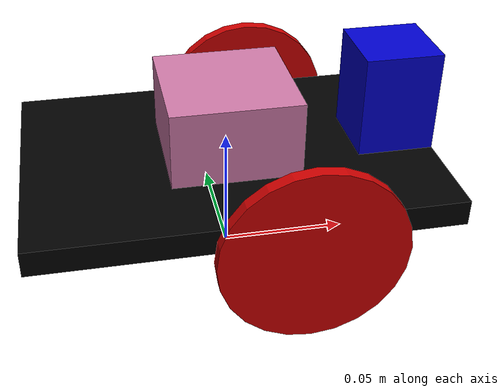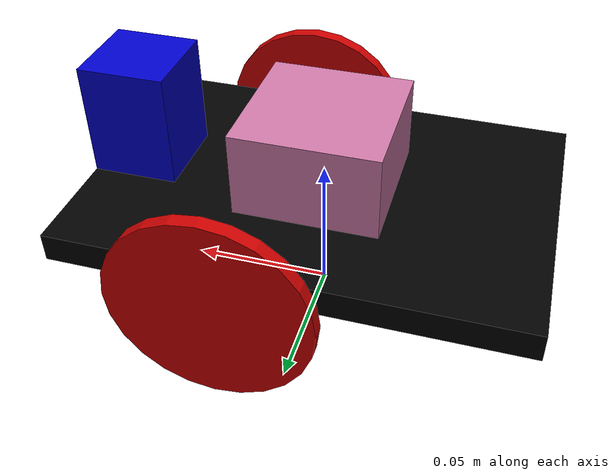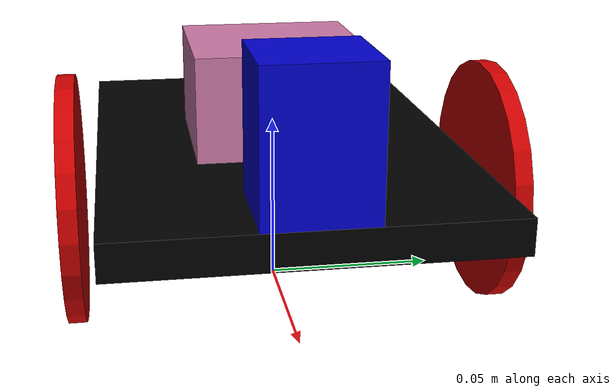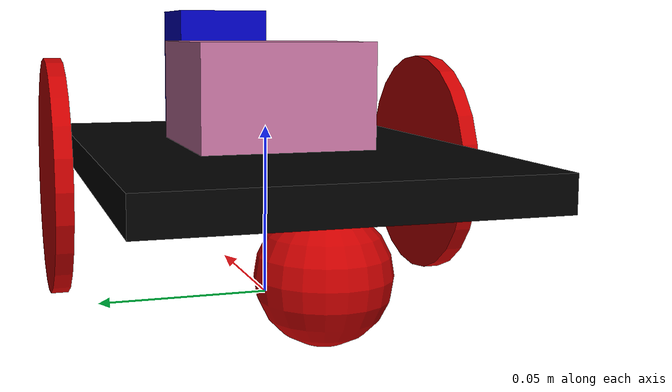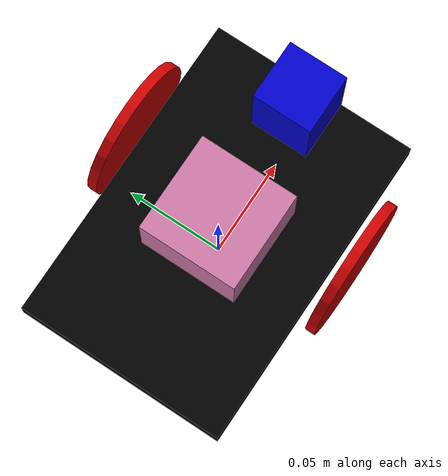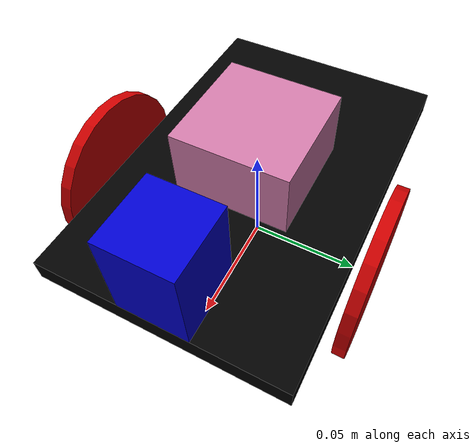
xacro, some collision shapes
<?xml version="1.0"?>
<robot xmlns:xacro="http://www.ros.org/wiki/xacro" name="mybot">

  <xacro:include filename="$(find lidar_based_tracking_object)/urdf/laser.xacro" />

  <xacro:property name="base_width" value="0.106"/>
  <xacro:property name="base_len" value="0.16"/>
  <xacro:property name="wheel_radius" value="0.035"/>
  <xacro:property name="base_wheel_gap" value="0.007"/>
  <xacro:property name="wheel_separation" value="0.12"/>
  <xacro:property name="wheel_joint_offset" value="0.02"/>

  <xacro:property name="caster_wheel_radius" value="${wheel_radius/2}"/>
  <xacro:property name="caster_wheel_mass" value="0.001"/>
  <xacro:property name="caster_wheel_joint_offset" value="-0.052"/>

  <xacro:property name="laser_size_x" value="0.03"/>
  <xacro:property name="laser_size_y" value="0.03"/>
  <xacro:property name="laser_size_z" value="0.04"/>
  <xacro:property name="laser_origin_x" value="0.065"/>
  <xacro:property name="laser_origin_y" value="0"/>
  <xacro:property name="laser_origin_z" value="0.025"/>

  <material name="blue">
    <color rgba="0 0 0.8 1"/>
  </material>
  <material name="black">
    <color rgba="0 0 0 1"/>
  </material>
  <material name="white">
    <color rgba="1 1 1 1"/>
  </material>
  <material name="red">
    <color rgba="0.8 0.0 0.0 1.0"/>
  </material>

  <xacro:macro name="default_inertial" params="mass">
    <inertial>
      <mass value="${mass}"/>
      <inertia ixx="1.0" ixy="0.0" ixz="0.0" iyy="1.0" iyz="0.0" izz="1.0"/>
    </inertial>
  </xacro:macro>

  <xacro:macro name="box_inertia" params="m w h d">
    <inertial>
      <origin xyz="0 0 0" rpy="${pi/2} 0 ${pi/2}"/>
      <mass value="${m}"/>
      <inertia ixx="${(m/12) * (h*h + d*d)}" ixy="0.0" ixz="0.0" iyy="${(m/12) * (w*w + d*d)}" iyz="0.0" izz="${(m/12) * (w*w + h*h)}"/>
    </inertial>
  </xacro:macro>

  <link name="base_footprint">
    <inertial>
      <mass value="0.0001" />
      <origin xyz="0 0 0" />
      <inertia ixx="0.0001" ixy="0.0" ixz="0.0"
          iyy="0.0001" iyz="0.0"
          izz="0.0001" />
    </inertial>
    <visual>
        <origin xyz="0 0 0" rpy="0 0 0" />
        <geometry>
            <box size="0.001 0.001 0.001" />
        </geometry>
    </visual>
  </link>

  <link name="base_link">
    <visual>
      <geometry>
        <box size="${base_len} ${base_width} 0.01"/>
      </geometry>
      <material name="black"/>
    </visual>
    <collision>
      <geometry>
        <box size="${base_len} ${base_width} 0.01"/>
      </geometry>
    </collision>
    <xacro:default_inertial mass="0.2"/>
  </link>

  <joint name="base_footprint_joint" type="fixed">
    <origin xyz="0 0 ${wheel_radius + 0.005}" rpy="0 0 0" />
    <parent link="base_footprint"/>
    <child link="base_link" />
  </joint>

  <xacro:macro name="wheel" params="prefix reflect">
    <link name="${prefix}_wheel">
      <visual>
        <origin xyz="0 0 0" rpy="${pi/2} 0 0"/>
        <geometry>
          <cylinder radius="${wheel_radius}" length="0.005"/>
        </geometry>
        <material name="red"/>
      </visual>
      <collision>
        <origin xyz="0 0 0" rpy="${pi/2} 0 0"/>
        <geometry>
          <cylinder radius="${wheel_radius}" length="0.005"/>
        </geometry>
      </collision>
      <xacro:default_inertial mass="0.02"/>
    </link>

    <joint name="${prefix}_wheel_joint" type="continuous">
      <axis xyz="0 1 0" rpy="0 0 0" />
      <parent link="base_link"/>
      <child link="${prefix}_wheel"/>
      <origin xyz="${wheel_joint_offset} ${((base_width/2)+base_wheel_gap)*reflect} -0.005" rpy="0 0 0"/>
    </joint>
  </xacro:macro>

  <xacro:wheel prefix="left" reflect="1"/>
  <xacro:wheel prefix="right" reflect="-1"/>

  <!--Caster Wheel-->
  <link name="caster_wheel">
    <visual>
      <origin xyz="0 0 0" rpy="0 0 0"/>
      <geometry>
        <sphere radius="${caster_wheel_radius}"/>
      </geometry>
      <material name="red"/>
    </visual>
    <collision>
      <origin xyz="0 0 0" rpy="0 0 0"/>
      <geometry>
        <sphere radius="${caster_wheel_radius}"/>
      </geometry>
    </collision>
    <xacro:default_inertial mass="0.01"/>
  </link>

  <joint name="caster_wheel_joint" type="continuous">
    <axis xyz="0 1 0" rpy="0 0 0" />
    <parent link="base_link"/>
    <child link="caster_wheel"/>
    <origin xyz="${caster_wheel_joint_offset} 0 -${caster_wheel_radius+0.005}" rpy="0 0 0"/>
  </joint>

  <!--Laser Scan-->
  <link name="sensor">
    <visual>
      <geometry>
        <mesh filename="package://lidar_based_tracking_object/meshes/hokuyo.dae"/>
        <!--box size="${laser_size_x} ${laser_size_y} ${laser_size_z}"/-->
      </geometry>
      <material name="blue"/>
    </visual>
    <collision>
      <geometry>
        <box size="${laser_size_x} ${laser_size_y} ${laser_size_z}"/>
      </geometry>
    </collision>
    <xacro:default_inertial mass="0.02"/>
  </link>

  <joint name="sensor_laser_joint" type="fixed">
    <origin xyz="${laser_origin_x} ${laser_origin_y} ${laser_origin_z}" rpy="0 0 0" />
    <parent link="base_link"/>
    <child link="sensor" />
  </joint>

  <link name="imu_link">
    <visual>
      <geometry>
        <box size="0.05 0.05 0.05"/>
      </geometry>
    </visual>

    <collision>
      <geometry>
        <box size="0.05 0.05 0.05"/>
      </geometry>
    </collision>

    <xacro:box_inertia m="0.05" w="0.05" d="0.05" h="0.05"/>
  </link>

  <joint name="imu_joint" type="fixed">
    <parent link="base_link"/>
    <child link="imu_link"/>
    <origin xyz="0 0 0.01"/>
  </joint>

  <gazebo reference="imu_link">
    <sensor name="imu_sensor" type="imu">
      <plugin filename="libgazebo_ros_imu_sensor.so" name="imu_plugin">
        <ros>
          <namespace>/demo</namespace>
          <remapping>~/out:=imu</remapping>
        </ros>
        <frameName>imu_link</frameName>
        <initial_orientation_as_reference>false</initial_orientation_as_reference>
      </plugin>
      <always_on>true</always_on>
      <update_rate>100</update_rate>
      <visualize>true</visualize>
     <imu>
     	<angular_velocity>
     	  <x>
     	    <noise type="gaussian">
              <mean>0.0</mean>
              <stddev>2e-4</stddev>
              <bias_mean>0.0000075</bias_mean>
              <bias_stddev>0.0000008</bias_stddev>
            </noise>
          </x>
          <y>
            <noise type="gaussian">
              <mean>0.0</mean>
              <stddev>2e-4</stddev>
              <bias_mean>0.0000075</bias_mean>
              <bias_stddev>0.0000008</bias_stddev>
            </noise>
          </y>
          <z>
            <noise type="gaussian">
              <mean>0.0</mean>
              <stddev>2e-4</stddev>
              <bias_mean>0.0000075</bias_mean>
              <bias_stddev>0.0000008</bias_stddev>
            </noise>
          </z>
        </angular_velocity>
        <linear_acceleration>
          <x>
            <noise type="gaussian">
              <mean>0.0</mean>
              <stddev>1.7e-2</stddev>
              <bias_mean>0.1</bias_mean>
              <bias_stddev>0.001</bias_stddev>
            </noise>
          </x>
          <y>
            <noise type="gaussian">
              <mean>0.0</mean>
              <stddev>1.7e-2</stddev>
              <bias_mean>0.1</bias_mean>
              <bias_stddev>0.001</bias_stddev>
            </noise>
          </y>
          <z>
            <noise type="gaussian">
              <mean>0.0</mean>
              <stddev>1.7e-2</stddev>
              <bias_mean>0.1</bias_mean>
              <bias_stddev>0.001</bias_stddev>
            </noise>
          </z>
        </linear_acceleration>
      </imu>
    </sensor>
  </gazebo>

</robot>
